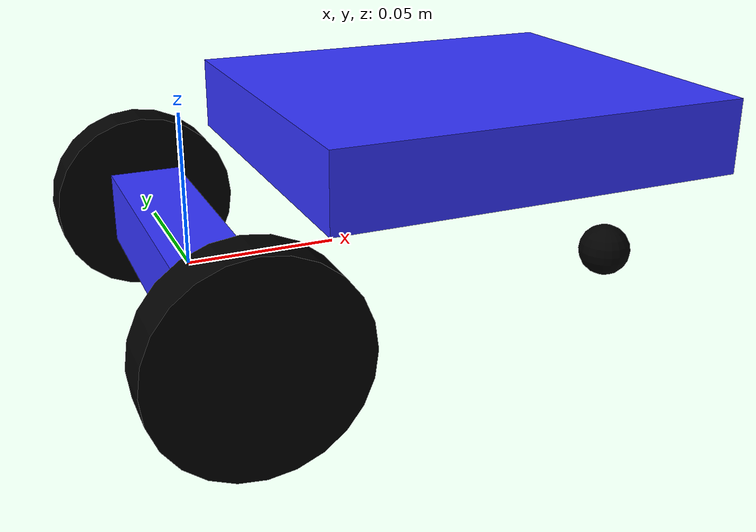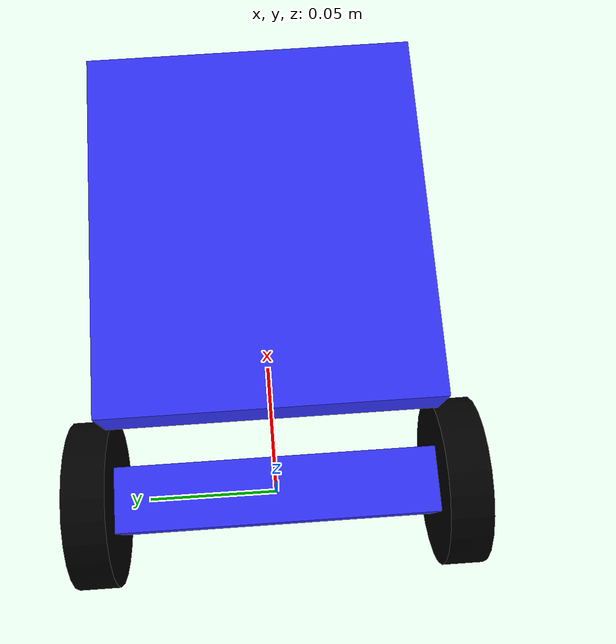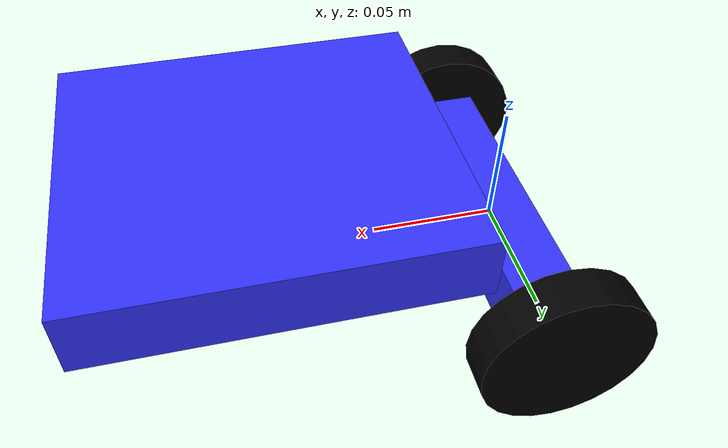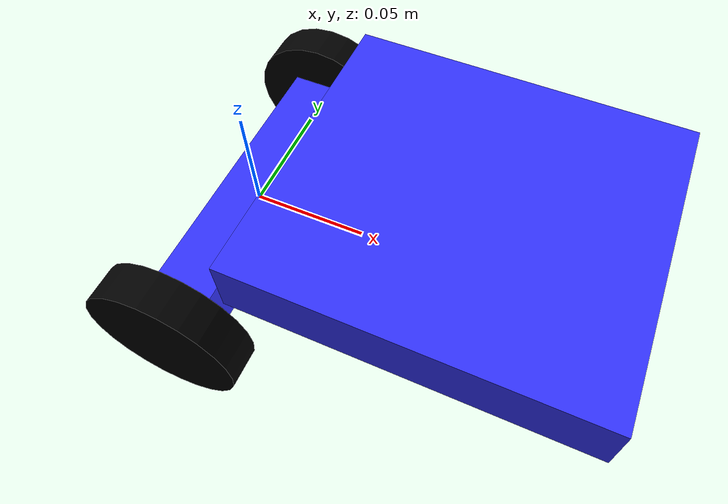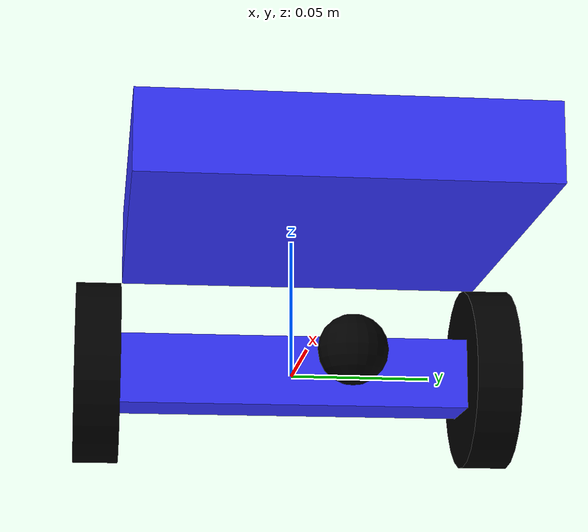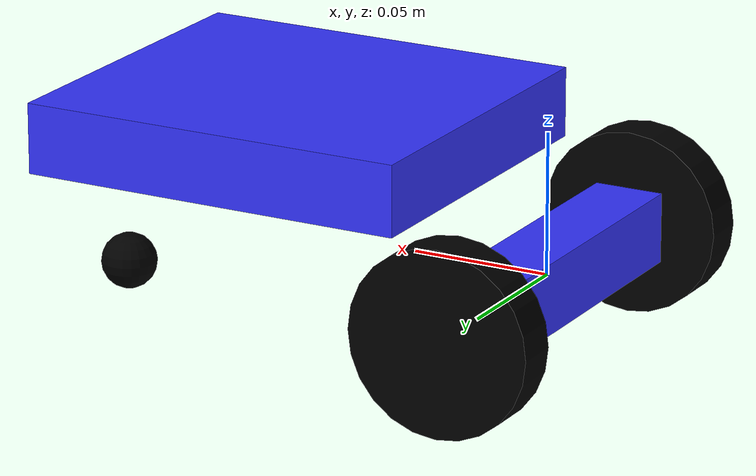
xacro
<?xml version="1.0" encoding="UTF-8"?>
<robot xmlns:xacro="http://wiki.ros.org/xacro" name="mbot_ranger_dashing_raptor">

  <!-- Use this if parameters are set from the launch file, otherwise delete -->
  <xacro:arg name="prefix" default="" />

  <xacro:arg name="use_mock_hardware" default="false" />
  <xacro:arg name="mock_sensor_commands" default="false" />
  <xacro:arg name="sim_gazebo_classic" default="false" />
  <xacro:arg name="sim_gazebo" default="false" />
  <xacro:arg name="simulation_controllers" default="" />

  <material name="white">
    <color rgba="1 1 1 1"/>
  </material>

  <material name="orange">
    <color rgba="1 0.3 0.1 1"/>
  </material>

  <material name="blue">
    <color rgba="0.2 0.2 1 1"/>
  </material>

  <material name="black">
    <color rgba="0 0 0 1"/>
  </material>

  <xacro:include filename="$(find mbot_description)/urdf/mbot_ranger_dashing_raptor/mbot_ranger_dashing_raptor_macro.xacro"/>
  <xacro:include filename="$(find mbot_description)/urdf/mbot_ranger_dashing_raptor/mbot_ranger_dashing_raptor_macro.ros2_control.xacro"/>

  <!-- Load robot's macro with parameters -->
  <!-- set prefix if multiple robots are used -->
  <xacro:mbot_ranger_dashing_raptor prefix="$(arg prefix)" parent="world" >
    <origin xyz="0 0 0" rpy="0 0 0" />          <!-- position robot in the world -->
  </xacro:mbot_ranger_dashing_raptor>

  <xacro:mbot_ranger_dashing_raptor_ros2_control
    name="mbot_ranger_dashing_raptor"
    prefix="$(arg prefix)"
    use_mock_hardware="$(arg use_mock_hardware)"
    mock_sensor_commands="$(arg mock_sensor_commands)"
    sim_gazebo_classic="$(arg sim_gazebo_classic)"
    sim_gazebo="$(arg sim_gazebo)"
    simulation_controllers="$(arg simulation_controllers)" />

</robot>

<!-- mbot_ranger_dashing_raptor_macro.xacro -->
<robot xmlns:xacro="http://wiki.ros.org/xacro">

  <xacro:include filename="$(find mbot_description)/urdf/common.xacro" />

  <xacro:macro name="mbot_ranger_dashing_raptor" params="prefix parent *origin">
    <!-- LINKS -->
    <!-- base link -->
    <link name="${prefix}base_link">
      <!-- Default inertial for Gazebo/Ingnition - copy and edit block from 'common.xacro'
           to get more realistic behaviour-->
      <xacro:default_inertial/>
      <visual>
        <origin xyz="0 0 0" rpy="0 0 0" />
        <geometry>
          <box size="0.025 0.125 0.025" />
        </geometry>
        <material name="blue" />
      </visual>
      <collision>
        <origin xyz="0 0 0" rpy="0 0 0" />
        <geometry>
          <box size="0.025 0.125 0.025" />
        </geometry>
      </collision>
    </link>

    <link name="${prefix}chassis">
      <!-- Default inertial for Gazebo/Ingnition - copy and edit block from 'common.xacro'
           to get more realistic behaviour-->
      <xacro:default_inertial/>
      <visual>
        <origin xyz="0.07 0 0" rpy="0 0 0" />
        <geometry>
          <box size="0.14 0.125 0.025" />
        </geometry>
        <material name="blue" />
      </visual>
      <collision>
        <origin xyz="0.07 0 0" rpy="0 0 0" />
        <geometry>
          <box size="0.14 0.125 0.025" />
        </geometry>
      </collision>
    </link>

    <!-- caster  wheel -->
    <link name="${prefix}caster_wheel">
      <!-- Default inertial for Gazebo/Ingnition - copy and edit block from 'common.xacro'
           to get more realistic behaviour-->
      <xacro:default_inertial/>
      <visual>
        <origin xyz="0 0 0" rpy="0 0 0" />
        <geometry>
          <sphere radius="0.01" />
        </geometry>
        <material name="black" />
      </visual>
      <collision>
        <origin xyz="0 0 0" rpy="0 0 0" />
        <geometry>
          <sphere radius="0.01" />
        </geometry>
      </collision>
    </link>

    <!-- left  wheel -->
    <link name="${prefix}left_wheel">
      <!-- Default inertial for Gazebo/Ingnition - copy and edit block from 'common.xacro'
           to get more realistic behaviour-->
      <xacro:default_inertial/>
      <visual>
        <origin xyz="0 0.008 0" rpy="0 ${pi/2} ${pi/2}" />
        <geometry>
          <cylinder length="0.016" radius="0.0325" />
        </geometry>
        <material name="black" />
      </visual>
      <collision>
        <origin xyz="0 0.008 0" rpy="0 ${pi/2} ${pi/2}" />
        <geometry>
          <cylinder length="0.016" radius="0.0325" />
        </geometry>
      </collision>
    </link>
    <!-- right wheel -->
    <link name="${prefix}right_wheel">
      <!-- Default inertial for Gazebo/Ingnition - copy and edit block from 'common.xacro'
           to get more realistic behaviour-->
      <xacro:default_inertial/>
      <visual>
        <origin xyz="0 -0.008 0" rpy="0 ${pi/2} ${pi/2}" />
        <geometry>
          <cylinder length="0.016" radius="0.0325" />
        </geometry>
        <material name="black" />
      </visual>
      <collision>
        <origin xyz="0 -0.008 0" rpy="0 ${pi/2} ${pi/2}" />
        <geometry>
          <cylinder length="0.016" radius="0.0325" />
        </geometry>
      </collision>
    </link>
    <!-- END LINKS -->

    <!-- JOINTS -->
    <joint name="${prefix}fixture1" type="fixed">
      <origin xyz="0.025 0 0.04" rpy="0 0 0" />
      <parent link="${prefix}base_link" />
      <child link="${prefix}chassis" />
      <axis xyz="0 0 1" />
    </joint>

    <joint name="${prefix}fixture2" type="fixed">
      <origin xyz="0.14 0 -0.0625" rpy="0 0 0" /> <!-- should touch ground while chassis is level -->
      <parent link="${prefix}chassis" />
      <child link="${prefix}caster_wheel" />
      <axis xyz="0 0 1" />
    </joint>

    <!-- joint 1 -->
    <joint name="${prefix}joint1" type="revolute">
      <origin xyz="0 -0.0625 0" rpy="0 0 0" />
      <parent link="${prefix}base_link" />
      <child link="${prefix}right_wheel" />
      <axis xyz="0 1 0" />
      <limit effort="0" lower="${radians(-180)}" upper="${radians(180)}" velocity="${radians(180)}" />
    </joint>
    <!-- joint 2 -->
    <joint name="${prefix}joint2" type="revolute">
      <origin xyz="0 0.0625 0" rpy="0 0 0" />
      <parent link="${prefix}base_link" />
      <child link="${prefix}left_wheel" />
      <axis xyz="0 1 0" />
      <limit effort="0" lower="${radians(-180)}" upper="${radians(180)}" velocity="${radians(180)}" />
    </joint>
    <!-- END JOINTS -->

  </xacro:macro>
</robot>
